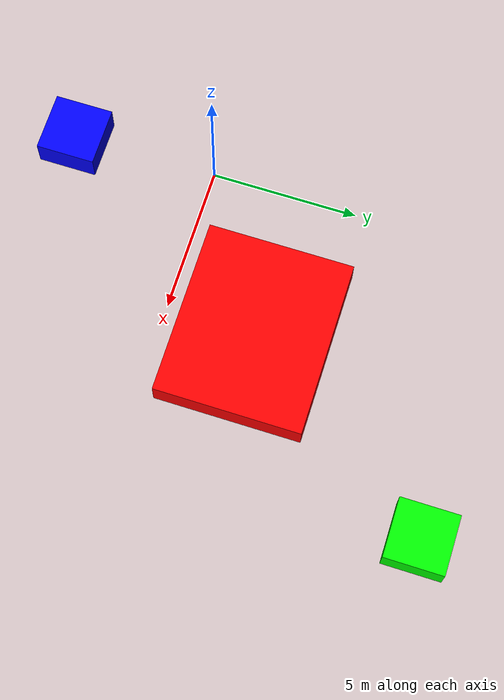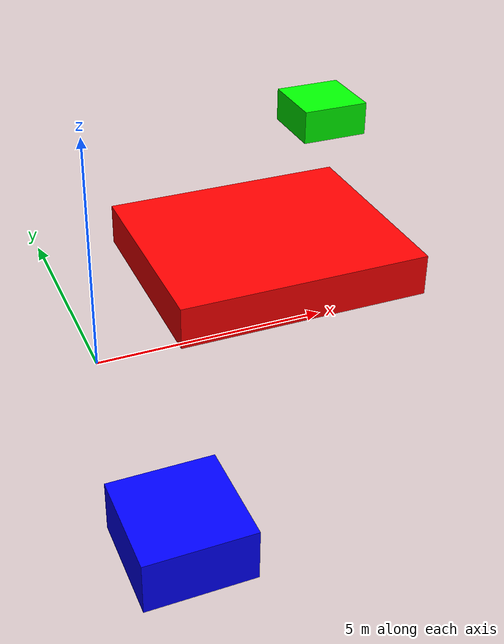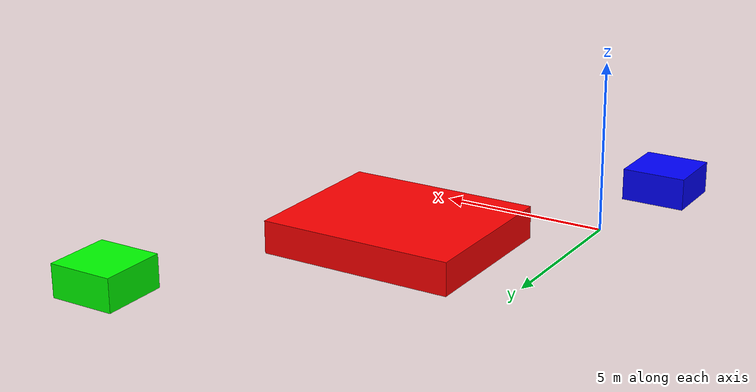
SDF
<sdf version="1.5">
    <world name="Example World">

        <model name="car0">
            <pose> 5 3 0 0 0 1.57 </pose>
            <link name="link">
                <visual name="visual">
                    <geometry>
                        <box>
                            <size> 5 6 1 </size>
                        </box>
                    </geometry>
                    <material>
                        <ambient> 1 0 0 1 </ambient>
                        <diffuse> 1 0 0 1 </diffuse>
                        <specular> 1 0 0 1 </specular>
                        <emissive> 1 0 0 1 </emissive>
                    </material>
                </visual>
            </link>
        </model>

        <model name="car1">
            <pose> 0 -5 0 0 0 3.14 </pose>
            <link name="link">
                <visual name="visual">
                    <geometry>
                        <box>
                            <size> 2 2 1 </size>
                        </box>
                    </geometry>
                    <material>
                        <ambient> 0 0 1 1 </ambient>
                        <diffuse> 0 0 1 1 </diffuse>
                        <specular> 0 0 1 1 </specular>
                        <emissive> 0 0 1 1 </emissive>
                    </material>
                </visual>
            </link>
        </model>

        <model name="car2">
            <pose> 10 10 0 0 0 0 </pose>
            <link name="link">
                <visual name="visual">
                    <geometry>
                        <box>
                            <size> 2 2 1 </size>
                        </box>
                    </geometry>
                    <material>
                        <ambient> 0 1 0 1 </ambient>
                        <diffuse> 0 1 0 1 </diffuse>
                        <specular> 0 1 0 1 </specular>
                        <emissive> 0 1 0 1 </emissive>
                    </material>
                </visual>
            </link>
        </model>

  </world>
</sdf>
